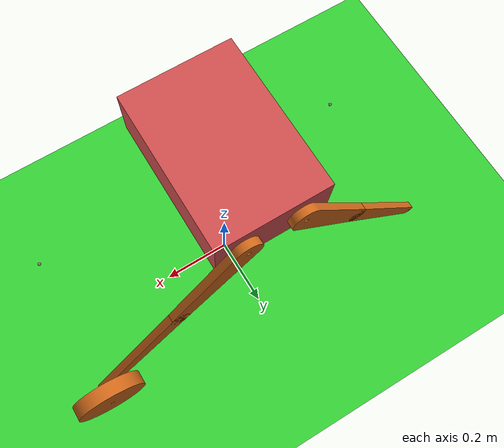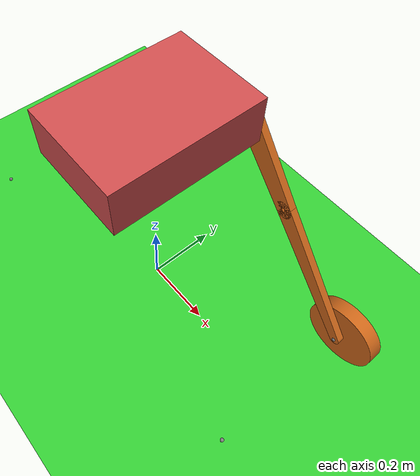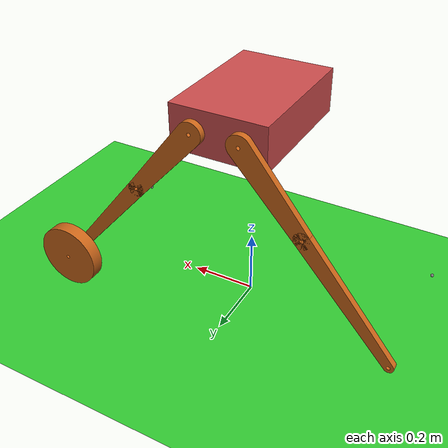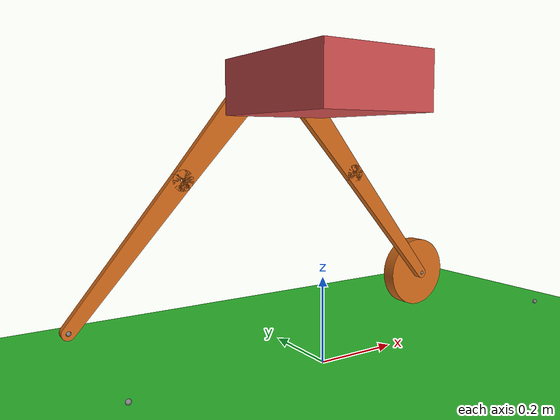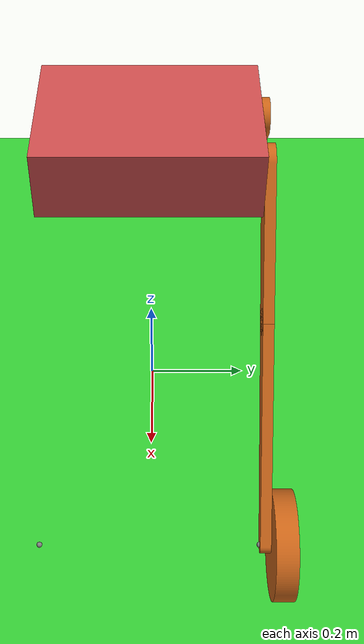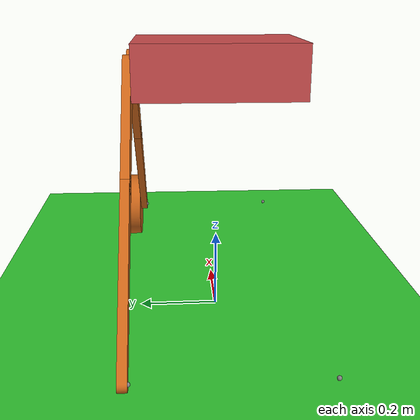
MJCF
<mujoco model="wheelbot">
  <compiler coordinate="local" inertiafromgeom="true"/>

  <asset>
    <mesh name="leg_1" file="leg_1.obj" scale="0.001 0.001 0.001"/>
    <mesh name="leg_2" file="leg_2.obj" scale="0.001 0.001 0.001"/>
    <mesh name="wheel" file="wheel.obj" scale="0.001 0.001 0.001"/>
  </asset>

  <default>
    <geom contype="0" friction="1 0.1 0.1" rgba="0.7 0.7 0 1"/>
  </default>
  <option gravity="1e-5 0 -9.81" integrator="RK4" timestep="0.01"/>

  <worldbody>
    <geom name="ground" type="plane" pos="0 0 0" size="5 5 0.1" rgba="0.2 0.8 0.2 1" contype="1" conaffinity="1"/>
    <!-- Free base body -->
    <body name="base" pos="0 0 0.635">
      <joint name="free_joint" type="free"/>

      <!-- Geometry for visualization -->
      <geom type="box" density="753" size="0.14 0.2 0.065" rgba="0.8 0.3 0.3 1" contype="1" conaffinity="1"/>
      <site name="boxsens" pos="0 0 0"/>

      <body name="leg_1_l_1" pos="0.07 0.2 0" euler="90 180 -40">
        <joint type="hinge" name="leg_1_l_1_h" axis="0 0 1" limited="true" range="-50 0" armature="1.0"/>
        <geom type="mesh" mesh="leg_1" density="1" rgba="0.8 0.4 0.1 1" group="1"/>

        <body name="leg_2_l_1" pos="0 -0.28 0">
          <joint type="hinge" axis="0 0 1"/>
          <geom type="mesh" mesh="leg_2" density="1" rgba="0.8 0.4 0.1 1" group="1"/>
          <site name="leg_2_l_1_s" pos="0 -0.407 0"/>

          <body name="wheel_l" pos="0 -0.407 0.02">
            <joint type="hinge" name="wheel_l_h" axis="0 0 1"/>
            <geom type="mesh" mesh="wheel" density="2388" rgba="0.8 0.4 0.1 1" group="1"/>
          </body>
        </body>
      </body>

      <body name="leg_1_l_2" pos="-0.07 0.2 0" euler="90 180 40">
        <joint type="hinge" name="leg_1_l_2_h" axis="0 0 1" limited="true" range="0 50" armature="1.0"/>
        <geom type="mesh" mesh="leg_1" density="1" rgba="0.8 0.4 0.1 1" group="2"/>

        <body name="leg_2_l_2" pos="0 -0.28 0">
          <joint type="hinge" axis="0 0 1"/>
          <geom type="mesh" mesh="leg_2" density="1" rgba="0.8 0.4 0.1 1" group="2"/>
          <site name="leg_2_l_2_s" pos="0 -0.407 0"/>
        </body>
      </body>

      <body name="leg_1_r_1" pos="0.07 -0.2 0" euler="90 0 40">
        <joint type="hinge" name="leg_1_r_1_h" axis="0 0 1" limited="true" range="0 50" armature="1.0"/>
        <geom type="mesh" mesh="leg_1" density="1" rgba="0.8 0.4 0.1 1" group="3"/>

        <body name="leg_2_r_1" pos="0 -0.28 0">
          <joint type="hinge" axis="0 0 1"/>
          <geom type="mesh" mesh="leg_2" density="1" rgba="0.8 0.4 0.1 1" group="3"/>
          <site name="leg_2_r_1_s" pos="0 -0.407 0"/>

          <body name="wheel_r" pos="0 -0.407 0.02">
            <joint type="hinge" name="wheel_r_h" axis="0 0 1"/>
            <geom type="mesh" mesh="wheel" density="2388" rgba="0.8 0.4 0.1 1" group="3"/>
          </body>
        </body>
      </body>

      <body name="leg_1_r_2" pos="-0.07 -0.2 0" euler="90 0 -40">
        <joint type="hinge" name="leg_1_r_2_h" axis="0 0 1" limited="true" range="-50 0" armature="1.0"/>
        <geom type="mesh" mesh="leg_1" density="1" rgba="0.8 0.4 0.1 1" group="4"/>

        <body name="leg_2_r_2" pos="0 -0.28 0">
          <joint type="hinge" axis="0 0 1"/>
          <geom type="mesh" mesh="leg_2" density="1" rgba="0.8 0.4 0.1 1" group="4"/>
          <site name="leg_2_r_2_s" pos="0 -0.407 0"/>
        </body>
      </body>
    </body>
  </worldbody>

  <equality>
    <connect site1="leg_2_l_1_s" site2="leg_2_l_2_s" solimp="0.9999 0.9999 0.001 0.1 4"/>
    <connect site1="leg_2_r_1_s" site2="leg_2_r_2_s" solimp="0.9999 0.9999 0.001 0.1 4"/>
  </equality>

  <actuator>
    <position name="leg_1_l_1_m" joint="leg_1_l_1_h" ctrllimited="true" ctrlrange="-0.872665 0" kp="2000" dampratio="1"/>
    <position name="leg_1_l_2_m" joint="leg_1_l_2_h" ctrllimited="true" ctrlrange="0 0.872665" kp="2000" dampratio="1"/>
    <position name="leg_1_r_1_m" joint="leg_1_r_1_h" ctrllimited="true" ctrlrange="0 0.872665" kp="2000" dampratio="1"/>
    <position name="leg_1_r_2_m" joint="leg_1_r_2_h" ctrllimited="true" ctrlrange="-0.872665 0" kp="2000" dampratio="1"/>
    <motor name="wheel_l_m" joint="wheel_l_h" ctrllimited="true" ctrlrange="-10 10"/>
    <motor name="wheel_r_m" joint="wheel_r_h" ctrllimited="true" ctrlrange="-10 10"/>

  </actuator>

  <sensor>
    <actuatorvel actuator="wheel_l_m"/>
    <actuatorvel actuator="wheel_r_m"/>
    <!-- angle velocity around y-->
    <frameangvel name="body_y_ang_vel" objtype="body" objname="base"/>
    <!-- velocity in x-->
    <velocimeter name="body_x_vel" site="boxsens"/>
  </sensor>

</mujoco>
